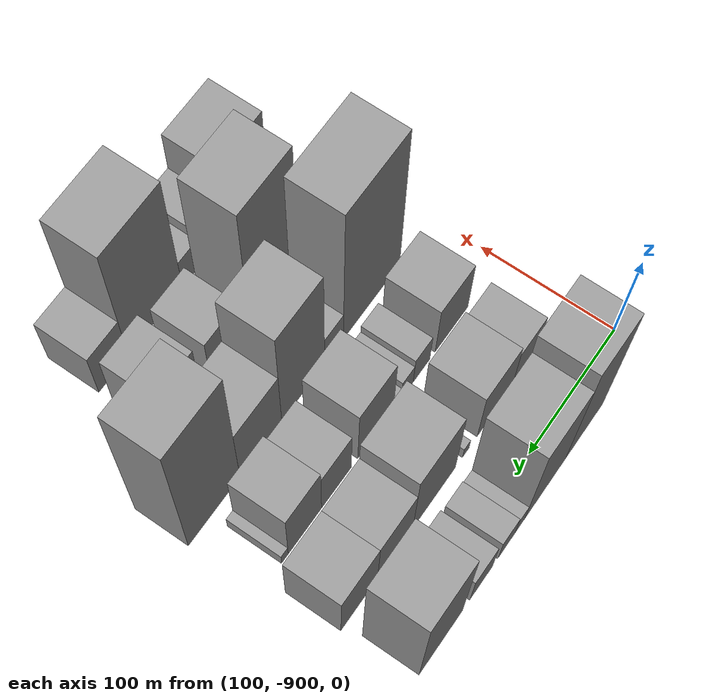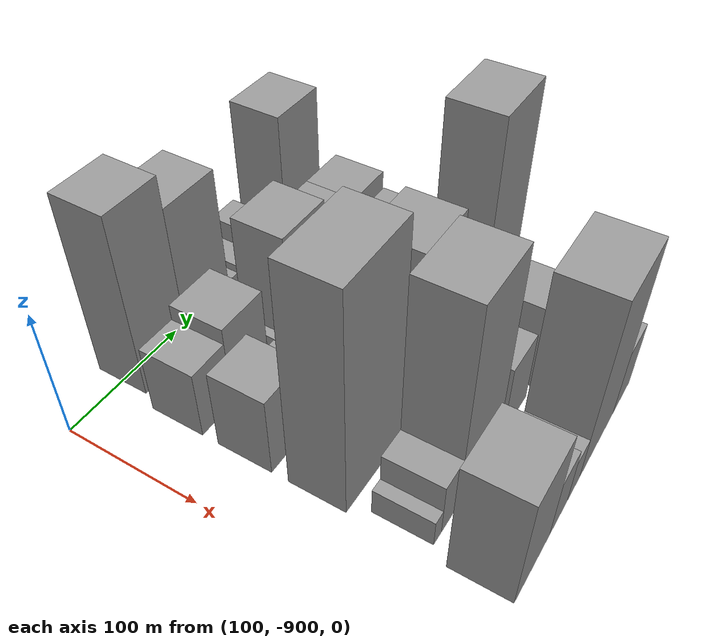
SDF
<sdf version="1.6">
 <world name="default">
  <model name="building_1">
   <static>1</static>
   <pose>100.0000 -831.2529 0 0.000000 0.000000 0.000000</pose>
   <link name="link">
    <pose>0 0 72.00 0 0 0</pose>
    <collision name="collision"><geometry><box><size>40.0000 43.4942 144.0000</size></box></geometry></collision>
    <visual name="visual">
     <cast_shadows>0</cast_shadows>
     <geometry><box><size>40.0000 43.4942 144.0000</size></box></geometry>
     <material>
      <script>
       <uri>model://grey_wall/materials/scripts</uri>
       <uri>model://grey_wall/materials/textures</uri>
       <name>vrc/grey_wall</name>
      </script>
     </material>
    </visual>
   </link>
  </model>
  <model name="building_2">
   <static>1</static>
   <pose>100.0000 -786.3513 0 0.000000 0.000000 0.000000</pose>
   <link name="link">
    <pose>0 0 60.00 0 0 0</pose>
    <collision name="collision"><geometry><box><size>40.0000 46.3092 120.0000</size></box></geometry></collision>
    <visual name="visual">
     <cast_shadows>0</cast_shadows>
     <geometry><box><size>40.0000 46.3092 120.0000</size></box></geometry>
     <material>
      <script>
       <uri>model://grey_wall/materials/scripts</uri>
       <uri>model://grey_wall/materials/textures</uri>
       <name>vrc/grey_wall</name>
      </script>
     </material>
    </visual>
   </link>
  </model>
  <model name="building_3">
   <static>1</static>
   <pose>100.0000 -757.7851 0 0.000000 0.000000 0.000000</pose>
   <link name="link">
    <pose>0 0 13.50 0 0 0</pose>
    <collision name="collision"><geometry><box><size>40.0000 10.8232 27.0000</size></box></geometry></collision>
    <visual name="visual">
     <cast_shadows>0</cast_shadows>
     <geometry><box><size>40.0000 10.8232 27.0000</size></box></geometry>
     <material>
      <script>
       <uri>model://grey_wall/materials/scripts</uri>
       <uri>model://grey_wall/materials/textures</uri>
       <name>vrc/grey_wall</name>
      </script>
     </material>
    </visual>
   </link>
  </model>
  <model name="building_4">
   <static>1</static>
   <pose>100.0000 -743.1036 0 0.000000 0.000000 0.000000</pose>
   <link name="link">
    <pose>0 0 16.50 0 0 0</pose>
    <collision name="collision"><geometry><box><size>40.0000 18.5398 33.0000</size></box></geometry></collision>
    <visual name="visual">
     <cast_shadows>0</cast_shadows>
     <geometry><box><size>40.0000 18.5398 33.0000</size></box></geometry>
     <material>
      <script>
       <uri>model://grey_wall/materials/scripts</uri>
       <uri>model://grey_wall/materials/textures</uri>
       <name>vrc/grey_wall</name>
      </script>
     </material>
    </visual>
   </link>
  </model>
  <model name="building_5">
   <static>1</static>
   <pose>100.0000 -715.5451 0 0.000000 0.000000 0.000000</pose>
   <link name="link">
    <pose>0 0 21.00 0 0 0</pose>
    <collision name="collision"><geometry><box><size>40.0000 24.5773 42.0000</size></box></geometry></collision>
    <visual name="visual">
     <cast_shadows>0</cast_shadows>
     <geometry><box><size>40.0000 24.5773 42.0000</size></box></geometry>
     <material>
      <script>
       <uri>model://grey_wall/materials/scripts</uri>
       <uri>model://grey_wall/materials/textures</uri>
       <name>vrc/grey_wall</name>
      </script>
     </material>
    </visual>
   </link>
  </model>
  <model name="building_6">
   <static>1</static>
   <pose>100.0000 -672.3743 0 0.000000 0.000000 0.000000</pose>
   <link name="link">
    <pose>0 0 60.00 0 0 0</pose>
    <collision name="collision"><geometry><box><size>40.0000 45.7643 120.0000</size></box></geometry></collision>
    <visual name="visual">
     <cast_shadows>0</cast_shadows>
     <geometry><box><size>40.0000 45.7643 120.0000</size></box></geometry>
     <material>
      <script>
       <uri>model://grey_wall/materials/scripts</uri>
       <uri>model://grey_wall/materials/textures</uri>
       <name>vrc/grey_wall</name>
      </script>
     </material>
    </visual>
   </link>
  </model>
  <model name="building_52">
   <static>1</static>
   <pose>152.0000 -845.1255 0 0.000000 0.000000 0.000000</pose>
   <link name="link">
    <pose>0 0 27.00 0 0 0</pose>
    <collision name="collision"><geometry><box><size>40.0000 29.7491 54.0000</size></box></geometry></collision>
    <visual name="visual">
     <cast_shadows>0</cast_shadows>
     <geometry><box><size>40.0000 29.7491 54.0000</size></box></geometry>
     <material>
      <script>
       <uri>model://grey_wall/materials/scripts</uri>
       <uri>model://grey_wall/materials/textures</uri>
       <name>vrc/grey_wall</name>
      </script>
     </material>
    </visual>
   </link>
  </model>
  <model name="building_53">
   <static>1</static>
   <pose>152.0000 -810.6342 0 0.000000 0.000000 0.000000</pose>
   <link name="link">
    <pose>0 0 33.00 0 0 0</pose>
    <collision name="collision"><geometry><box><size>40.0000 39.2335 66.0000</size></box></geometry></collision>
    <visual name="visual">
     <cast_shadows>0</cast_shadows>
     <geometry><box><size>40.0000 39.2335 66.0000</size></box></geometry>
     <material>
      <script>
       <uri>model://grey_wall/materials/scripts</uri>
       <uri>model://grey_wall/materials/textures</uri>
       <name>vrc/grey_wall</name>
      </script>
     </material>
    </visual>
   </link>
  </model>
  <model name="building_54">
   <static>1</static>
   <pose>152.0000 -778.3566 0 0.000000 0.000000 0.000000</pose>
   <link name="link">
    <pose>0 0 7.50 0 0 0</pose>
    <collision name="collision"><geometry><box><size>40.0000 7.3215 15.0000</size></box></geometry></collision>
    <visual name="visual">
     <cast_shadows>0</cast_shadows>
     <geometry><box><size>40.0000 7.3215 15.0000</size></box></geometry>
     <material>
      <script>
       <uri>model://grey_wall/materials/scripts</uri>
       <uri>model://grey_wall/materials/textures</uri>
       <name>vrc/grey_wall</name>
      </script>
     </material>
    </visual>
   </link>
  </model>
  <model name="building_55">
   <static>1</static>
   <pose>152.0000 -743.5106 0 0.000000 0.000000 0.000000</pose>
   <link name="link">
    <pose>0 0 45.00 0 0 0</pose>
    <collision name="collision"><geometry><box><size>40.0000 46.3705 90.0000</size></box></geometry></collision>
    <visual name="visual">
     <cast_shadows>0</cast_shadows>
     <geometry><box><size>40.0000 46.3705 90.0000</size></box></geometry>
     <material>
      <script>
       <uri>model://grey_wall/materials/scripts</uri>
       <uri>model://grey_wall/materials/textures</uri>
       <name>vrc/grey_wall</name>
      </script>
     </material>
    </visual>
   </link>
  </model>
  <model name="building_56">
   <static>1</static>
   <pose>152.0000 -701.5394 0 0.000000 0.000000 0.000000</pose>
   <link name="link">
    <pose>0 0 33.00 0 0 0</pose>
    <collision name="collision"><geometry><box><size>40.0000 37.5720 66.0000</size></box></geometry></collision>
    <visual name="visual">
     <cast_shadows>0</cast_shadows>
     <geometry><box><size>40.0000 37.5720 66.0000</size></box></geometry>
     <material>
      <script>
       <uri>model://grey_wall/materials/scripts</uri>
       <uri>model://grey_wall/materials/textures</uri>
       <name>vrc/grey_wall</name>
      </script>
     </material>
    </visual>
   </link>
  </model>
  <model name="building_57">
   <static>1</static>
   <pose>152.0000 -663.7339 0 0.000000 0.000000 0.000000</pose>
   <link name="link">
    <pose>0 0 33.00 0 0 0</pose>
    <collision name="collision"><geometry><box><size>40.0000 38.0390 66.0000</size></box></geometry></collision>
    <visual name="visual">
     <cast_shadows>0</cast_shadows>
     <geometry><box><size>40.0000 38.0390 66.0000</size></box></geometry>
     <material>
      <script>
       <uri>model://grey_wall/materials/scripts</uri>
       <uri>model://grey_wall/materials/textures</uri>
       <name>vrc/grey_wall</name>
      </script>
     </material>
    </visual>
   </link>
  </model>
  <model name="building_94">
   <static>1</static>
   <pose>204.0000 -841.3755 0 0.000000 0.000000 0.000000</pose>
   <link name="link">
    <pose>0 0 31.50 0 0 0</pose>
    <collision name="collision"><geometry><box><size>40.0000 37.2490 63.0000</size></box></geometry></collision>
    <visual name="visual">
     <cast_shadows>0</cast_shadows>
     <geometry><box><size>40.0000 37.2490 63.0000</size></box></geometry>
     <material>
      <script>
       <uri>model://grey_wall/materials/scripts</uri>
       <uri>model://grey_wall/materials/textures</uri>
       <name>vrc/grey_wall</name>
      </script>
     </material>
    </visual>
   </link>
  </model>
  <model name="building_95">
   <static>1</static>
   <pose>204.0000 -807.4104 0 0.000000 0.000000 0.000000</pose>
   <link name="link">
    <pose>0 0 18.00 0 0 0</pose>
    <collision name="collision"><geometry><box><size>40.0000 18.6813 36.0000</size></box></geometry></collision>
    <visual name="visual">
     <cast_shadows>0</cast_shadows>
     <geometry><box><size>40.0000 18.6813 36.0000</size></box></geometry>
     <material>
      <script>
       <uri>model://grey_wall/materials/scripts</uri>
       <uri>model://grey_wall/materials/textures</uri>
       <name>vrc/grey_wall</name>
      </script>
     </material>
    </visual>
   </link>
  </model>
  <model name="building_96">
   <static>1</static>
   <pose>204.0000 -791.4797 0 0.000000 0.000000 0.000000</pose>
   <link name="link">
    <pose>0 0 13.50 0 0 0</pose>
    <collision name="collision"><geometry><box><size>40.0000 13.1799 27.0000</size></box></geometry></collision>
    <visual name="visual">
     <cast_shadows>0</cast_shadows>
     <geometry><box><size>40.0000 13.1799 27.0000</size></box></geometry>
     <material>
      <script>
       <uri>model://grey_wall/materials/scripts</uri>
       <uri>model://grey_wall/materials/textures</uri>
       <name>vrc/grey_wall</name>
      </script>
     </material>
    </visual>
   </link>
  </model>
  <model name="building_97">
   <static>1</static>
   <pose>204.0000 -780.4863 0 0.000000 0.000000 0.000000</pose>
   <link name="link">
    <pose>0 0 9.00 0 0 0</pose>
    <collision name="collision"><geometry><box><size>40.0000 8.8071 18.0000</size></box></geometry></collision>
    <visual name="visual">
     <cast_shadows>0</cast_shadows>
     <geometry><box><size>40.0000 8.8071 18.0000</size></box></geometry>
     <material>
      <script>
       <uri>model://grey_wall/materials/scripts</uri>
       <uri>model://grey_wall/materials/textures</uri>
       <name>vrc/grey_wall</name>
      </script>
     </material>
    </visual>
   </link>
  </model>
  <model name="building_98">
   <static>1</static>
   <pose>204.0000 -756.8051 0 0.000000 0.000000 0.000000</pose>
   <link name="link">
    <pose>0 0 37.50 0 0 0</pose>
    <collision name="collision"><geometry><box><size>40.0000 38.5552 75.0000</size></box></geometry></collision>
    <visual name="visual">
     <cast_shadows>0</cast_shadows>
     <geometry><box><size>40.0000 38.5552 75.0000</size></box></geometry>
     <material>
      <script>
       <uri>model://grey_wall/materials/scripts</uri>
       <uri>model://grey_wall/materials/textures</uri>
       <name>vrc/grey_wall</name>
      </script>
     </material>
    </visual>
   </link>
  </model>
  <model name="building_99">
   <static>1</static>
   <pose>204.0000 -714.7862 0 0.000000 0.000000 0.000000</pose>
   <link name="link">
    <pose>0 0 28.50 0 0 0</pose>
    <collision name="collision"><geometry><box><size>40.0000 31.4826 57.0000</size></box></geometry></collision>
    <visual name="visual">
     <cast_shadows>0</cast_shadows>
     <geometry><box><size>40.0000 31.4826 57.0000</size></box></geometry>
     <material>
      <script>
       <uri>model://grey_wall/materials/scripts</uri>
       <uri>model://grey_wall/materials/textures</uri>
       <name>vrc/grey_wall</name>
      </script>
     </material>
    </visual>
   </link>
  </model>
  <model name="building_100">
   <static>1</static>
   <pose>204.0000 -681.7941 0 0.000000 0.000000 0.000000</pose>
   <link name="link">
    <pose>0 0 34.50 0 0 0</pose>
    <collision name="collision"><geometry><box><size>40.0000 34.5015 69.0000</size></box></geometry></collision>
    <visual name="visual">
     <cast_shadows>0</cast_shadows>
     <geometry><box><size>40.0000 34.5015 69.0000</size></box></geometry>
     <material>
      <script>
       <uri>model://grey_wall/materials/scripts</uri>
       <uri>model://grey_wall/materials/textures</uri>
       <name>vrc/grey_wall</name>
      </script>
     </material>
    </visual>
   </link>
  </model>
  <model name="building_101">
   <static>1</static>
   <pose>204.0000 -661.1271 0 0.000000 0.000000 0.000000</pose>
   <link name="link">
    <pose>0 0 7.50 0 0 0</pose>
    <collision name="collision"><geometry><box><size>40.0000 6.8325 15.0000</size></box></geometry></collision>
    <visual name="visual">
     <cast_shadows>0</cast_shadows>
     <geometry><box><size>40.0000 6.8325 15.0000</size></box></geometry>
     <material>
      <script>
       <uri>model://grey_wall/materials/scripts</uri>
       <uri>model://grey_wall/materials/textures</uri>
       <name>vrc/grey_wall</name>
      </script>
     </material>
    </visual>
   </link>
  </model>
  <model name="building_144">
   <static>1</static>
   <pose>256.0000 -828.5004 0 0.000000 0.000000 0.000000</pose>
   <link name="link">
    <pose>0 0 87.00 0 0 0</pose>
    <collision name="collision"><geometry><box><size>40.0000 62.9993 174.0000</size></box></geometry></collision>
    <visual name="visual">
     <cast_shadows>0</cast_shadows>
     <geometry><box><size>40.0000 62.9993 174.0000</size></box></geometry>
     <material>
      <script>
       <uri>model://grey_wall/materials/scripts</uri>
       <uri>model://grey_wall/materials/textures</uri>
       <name>vrc/grey_wall</name>
      </script>
     </material>
    </visual>
   </link>
  </model>
  <model name="building_145">
   <static>1</static>
   <pose>256.0000 -786.7940 0 0.000000 0.000000 0.000000</pose>
   <link name="link">
    <pose>0 0 19.50 0 0 0</pose>
    <collision name="collision"><geometry><box><size>40.0000 20.4135 39.0000</size></box></geometry></collision>
    <visual name="visual">
     <cast_shadows>0</cast_shadows>
     <geometry><box><size>40.0000 20.4135 39.0000</size></box></geometry>
     <material>
      <script>
       <uri>model://grey_wall/materials/scripts</uri>
       <uri>model://grey_wall/materials/textures</uri>
       <name>vrc/grey_wall</name>
      </script>
     </material>
    </visual>
   </link>
  </model>
  <model name="building_146">
   <static>1</static>
   <pose>256.0000 -753.5805 0 0.000000 0.000000 0.000000</pose>
   <link name="link">
    <pose>0 0 66.00 0 0 0</pose>
    <collision name="collision"><geometry><box><size>40.0000 46.0135 132.0000</size></box></geometry></collision>
    <visual name="visual">
     <cast_shadows>0</cast_shadows>
     <geometry><box><size>40.0000 46.0135 132.0000</size></box></geometry>
     <material>
      <script>
       <uri>model://grey_wall/materials/scripts</uri>
       <uri>model://grey_wall/materials/textures</uri>
       <name>vrc/grey_wall</name>
      </script>
     </material>
    </visual>
   </link>
  </model>
  <model name="building_147">
   <static>1</static>
   <pose>256.0000 -708.7814 0 0.000000 0.000000 0.000000</pose>
   <link name="link">
    <pose>0 0 37.50 0 0 0</pose>
    <collision name="collision"><geometry><box><size>40.0000 43.5847 75.0000</size></box></geometry></collision>
    <visual name="visual">
     <cast_shadows>0</cast_shadows>
     <geometry><box><size>40.0000 43.5847 75.0000</size></box></geometry>
     <material>
      <script>
       <uri>model://grey_wall/materials/scripts</uri>
       <uri>model://grey_wall/materials/textures</uri>
       <name>vrc/grey_wall</name>
      </script>
     </material>
    </visual>
   </link>
  </model>
  <model name="building_148">
   <static>1</static>
   <pose>256.0000 -660.7673 0 0.000000 0.000000 0.000000</pose>
   <link name="link">
    <pose>0 0 84.00 0 0 0</pose>
    <collision name="collision"><geometry><box><size>40.0000 52.4436 168.0000</size></box></geometry></collision>
    <visual name="visual">
     <cast_shadows>0</cast_shadows>
     <geometry><box><size>40.0000 52.4436 168.0000</size></box></geometry>
     <material>
      <script>
       <uri>model://grey_wall/materials/scripts</uri>
       <uri>model://grey_wall/materials/textures</uri>
       <name>vrc/grey_wall</name>
      </script>
     </material>
    </visual>
   </link>
  </model>
  <model name="building_188">
   <static>1</static>
   <pose>308.0000 -847.4489 0 0.000000 0.000000 0.000000</pose>
   <link name="link">
    <pose>0 0 10.50 0 0 0</pose>
    <collision name="collision"><geometry><box><size>40.0000 9.1022 21.0000</size></box></geometry></collision>
    <visual name="visual">
     <cast_shadows>0</cast_shadows>
     <geometry><box><size>40.0000 9.1022 21.0000</size></box></geometry>
     <material>
      <script>
       <uri>model://grey_wall/materials/scripts</uri>
       <uri>model://grey_wall/materials/textures</uri>
       <name>vrc/grey_wall</name>
      </script>
     </material>
    </visual>
   </link>
  </model>
  <model name="building_189">
   <static>1</static>
   <pose>308.0000 -832.1329 0 0.000000 0.000000 0.000000</pose>
   <link name="link">
    <pose>0 0 21.00 0 0 0</pose>
    <collision name="collision"><geometry><box><size>40.0000 21.5297 42.0000</size></box></geometry></collision>
    <visual name="visual">
     <cast_shadows>0</cast_shadows>
     <geometry><box><size>40.0000 21.5297 42.0000</size></box></geometry>
     <material>
      <script>
       <uri>model://grey_wall/materials/scripts</uri>
       <uri>model://grey_wall/materials/textures</uri>
       <name>vrc/grey_wall</name>
      </script>
     </material>
    </visual>
   </link>
  </model>
  <model name="building_190">
   <static>1</static>
   <pose>308.0000 -795.3180 0 0.000000 0.000000 0.000000</pose>
   <link name="link">
    <pose>0 0 79.50 0 0 0</pose>
    <collision name="collision"><geometry><box><size>40.0000 52.1003 159.0000</size></box></geometry></collision>
    <visual name="visual">
     <cast_shadows>0</cast_shadows>
     <geometry><box><size>40.0000 52.1003 159.0000</size></box></geometry>
     <material>
      <script>
       <uri>model://grey_wall/materials/scripts</uri>
       <uri>model://grey_wall/materials/textures</uri>
       <name>vrc/grey_wall</name>
      </script>
     </material>
    </visual>
   </link>
  </model>
  <model name="building_191">
   <static>1</static>
   <pose>308.0000 -744.3976 0 0.000000 0.000000 0.000000</pose>
   <link name="link">
    <pose>0 0 28.50 0 0 0</pose>
    <collision name="collision"><geometry><box><size>40.0000 33.7404 57.0000</size></box></geometry></collision>
    <visual name="visual">
     <cast_shadows>0</cast_shadows>
     <geometry><box><size>40.0000 33.7404 57.0000</size></box></geometry>
     <material>
      <script>
       <uri>model://grey_wall/materials/scripts</uri>
       <uri>model://grey_wall/materials/textures</uri>
       <name>vrc/grey_wall</name>
      </script>
     </material>
    </visual>
   </link>
  </model>
  <model name="building_192">
   <static>1</static>
   <pose>308.0000 -699.2083 0 0.000000 0.000000 0.000000</pose>
   <link name="link">
    <pose>0 0 34.50 0 0 0</pose>
    <collision name="collision"><geometry><box><size>40.0000 36.6383 69.0000</size></box></geometry></collision>
    <visual name="visual">
     <cast_shadows>0</cast_shadows>
     <geometry><box><size>40.0000 36.6383 69.0000</size></box></geometry>
     <material>
      <script>
       <uri>model://grey_wall/materials/scripts</uri>
       <uri>model://grey_wall/materials/textures</uri>
       <name>vrc/grey_wall</name>
      </script>
     </material>
    </visual>
   </link>
  </model>
  <model name="building_236">
   <static>1</static>
   <pose>360.0000 -836.3985 0 0.000000 0.000000 0.000000</pose>
   <link name="link">
    <pose>0 0 45.00 0 0 0</pose>
    <collision name="collision"><geometry><box><size>40.0000 47.2031 90.0000</size></box></geometry></collision>
    <visual name="visual">
     <cast_shadows>0</cast_shadows>
     <geometry><box><size>40.0000 47.2031 90.0000</size></box></geometry>
     <material>
      <script>
       <uri>model://grey_wall/materials/scripts</uri>
       <uri>model://grey_wall/materials/textures</uri>
       <name>vrc/grey_wall</name>
      </script>
     </material>
    </visual>
   </link>
  </model>
  <model name="building_237">
   <static>1</static>
   <pose>360.0000 -799.9636 0 0.000000 0.000000 0.000000</pose>
   <link name="link">
    <pose>0 0 24.00 0 0 0</pose>
    <collision name="collision"><geometry><box><size>40.0000 25.6667 48.0000</size></box></geometry></collision>
    <visual name="visual">
     <cast_shadows>0</cast_shadows>
     <geometry><box><size>40.0000 25.6667 48.0000</size></box></geometry>
     <material>
      <script>
       <uri>model://grey_wall/materials/scripts</uri>
       <uri>model://grey_wall/materials/textures</uri>
       <name>vrc/grey_wall</name>
      </script>
     </material>
    </visual>
   </link>
  </model>
  <model name="building_238">
   <static>1</static>
   <pose>360.0000 -777.4679 0 0.000000 0.000000 0.000000</pose>
   <link name="link">
    <pose>0 0 18.00 0 0 0</pose>
    <collision name="collision"><geometry><box><size>40.0000 19.3247 36.0000</size></box></geometry></collision>
    <visual name="visual">
     <cast_shadows>0</cast_shadows>
     <geometry><box><size>40.0000 19.3247 36.0000</size></box></geometry>
     <material>
      <script>
       <uri>model://grey_wall/materials/scripts</uri>
       <uri>model://grey_wall/materials/textures</uri>
       <name>vrc/grey_wall</name>
      </script>
     </material>
    </visual>
   </link>
  </model>
  <model name="building_239">
   <static>1</static>
   <pose>360.0000 -739.5137 0 0.000000 0.000000 0.000000</pose>
   <link name="link">
    <pose>0 0 72.00 0 0 0</pose>
    <collision name="collision"><geometry><box><size>40.0000 56.5839 144.0000</size></box></geometry></collision>
    <visual name="visual">
     <cast_shadows>0</cast_shadows>
     <geometry><box><size>40.0000 56.5839 144.0000</size></box></geometry>
     <material>
      <script>
       <uri>model://grey_wall/materials/scripts</uri>
       <uri>model://grey_wall/materials/textures</uri>
       <name>vrc/grey_wall</name>
      </script>
     </material>
    </visual>
   </link>
  </model>
  <model name="building_240">
   <static>1</static>
   <pose>360.0000 -696.2247 0 0.000000 0.000000 0.000000</pose>
   <link name="link">
    <pose>0 0 27.00 0 0 0</pose>
    <collision name="collision"><geometry><box><size>40.0000 29.9941 54.0000</size></box></geometry></collision>
    <visual name="visual">
     <cast_shadows>0</cast_shadows>
     <geometry><box><size>40.0000 29.9941 54.0000</size></box></geometry>
     <material>
      <script>
       <uri>model://grey_wall/materials/scripts</uri>
       <uri>model://grey_wall/materials/textures</uri>
       <name>vrc/grey_wall</name>
      </script>
     </material>
    </visual>
   </link>
  </model>
 </world>
</sdf>
